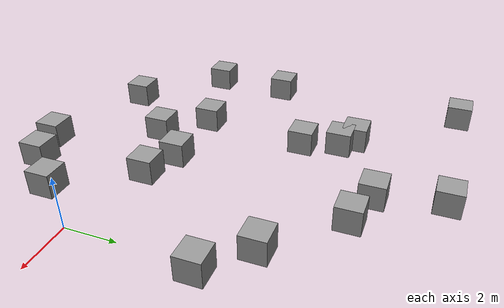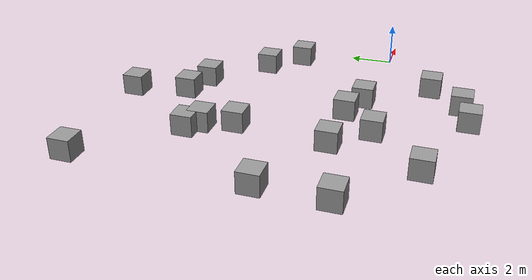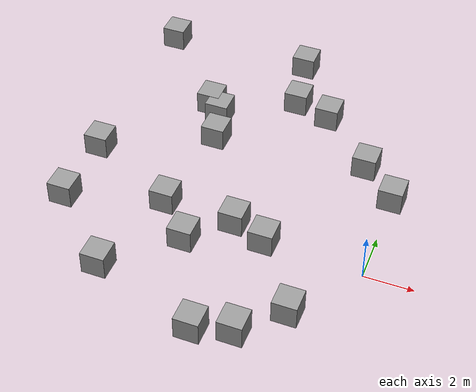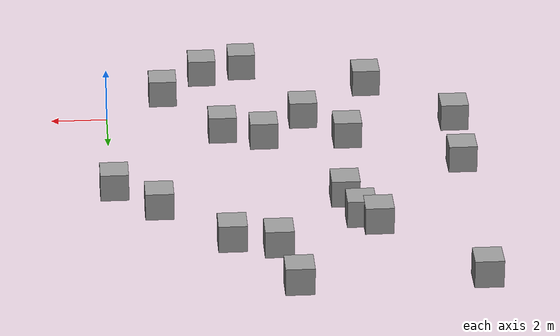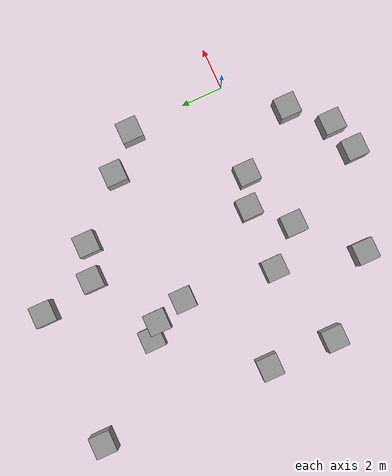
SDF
<sdf version="1.7">
 <model name="21">
  <link name="link_10">
   <inertial>
    <mass>1</mass>
    <inertia>
     <ixx>0.166667</ixx>
     <ixy>0</ixy>
     <ixz>0</ixz>
     <iyy>0.166667</iyy>
     <iyz>0</iyz>
     <izz>0.166667</izz>
    </inertia>
   </inertial>
   <pose>-6.1425 11.6478 0 0 -0 0</pose>
   <visual name="visual">
    <geometry><box><size>1 1 1</size></box></geometry>
    <material>
     <lighting>1</lighting>
     <script><uri>file://media/materials/scripts/gazebo.material</uri><name>Gazebo/Grey</name></script>
     <shader type="pixel"/>
    </material>
   </visual>
   <collision name="collision">
    <geometry><box><size>1 1 1</size></box></geometry>
    <surface>
     <friction>
      <ode><mu>1</mu><mu2>1</mu2><fdir1>0 0 0</fdir1><slip1>0</slip1><slip2>0</slip2></ode>
      <torsional>
       <coefficient>1</coefficient>
       <patch_radius>0</patch_radius>
       <surface_radius>0</surface_radius>
       <use_patch_radius>1</use_patch_radius>
       <ode><slip>0</slip></ode>
      </torsional>
     </friction>
     <bounce><restitution_coefficient>0</restitution_coefficient><threshold>1e+06</threshold></bounce>
     <contact>
      <collide_without_contact>0</collide_without_contact>
      <collide_without_contact_bitmask>1</collide_without_contact_bitmask>
      <collide_bitmask>1</collide_bitmask>
      <ode>
       <soft_cfm>0</soft_cfm>
       <soft_erp>0.2</soft_erp>
       <kp>1e+13</kp>
       <kd>1</kd>
       <max_vel>0.01</max_vel>
       <min_depth>0</min_depth>
      </ode>
      <bullet>
       <split_impulse>1</split_impulse>
       <split_impulse_penetration_threshold>-0.01</split_impulse_penetration_threshold>
       <soft_cfm>0</soft_cfm>
       <soft_erp>0.2</soft_erp>
       <kp>1e+13</kp>
       <kd>1</kd>
      </bullet>
     </contact>
    </surface>
   </collision>
  </link>
  <link name="link_11">
   <inertial>
    <mass>1</mass>
    <inertia>
     <ixx>0.166667</ixx>
     <ixy>0</ixy>
     <ixz>0</ixz>
     <iyy>0.166667</iyy>
     <iyz>0</iyz>
     <izz>0.166667</izz>
    </inertia>
   </inertial>
   <pose>-0.123891 4.67345 0 0 -0 0</pose>
   <visual name="visual">
    <geometry><box><size>1 1 1</size></box></geometry>
    <material>
     <lighting>1</lighting>
     <script><uri>file://media/materials/scripts/gazebo.material</uri><name>Gazebo/Grey</name></script>
     <shader type="pixel"/>
    </material>
   </visual>
   <collision name="collision">
    <geometry><box><size>1 1 1</size></box></geometry>
    <surface>
     <friction>
      <ode><mu>1</mu><mu2>1</mu2><fdir1>0 0 0</fdir1><slip1>0</slip1><slip2>0</slip2></ode>
      <torsional>
       <coefficient>1</coefficient>
       <patch_radius>0</patch_radius>
       <surface_radius>0</surface_radius>
       <use_patch_radius>1</use_patch_radius>
       <ode><slip>0</slip></ode>
      </torsional>
     </friction>
     <bounce><restitution_coefficient>0</restitution_coefficient><threshold>1e+06</threshold></bounce>
     <contact>
      <collide_without_contact>0</collide_without_contact>
      <collide_without_contact_bitmask>1</collide_without_contact_bitmask>
      <collide_bitmask>1</collide_bitmask>
      <ode>
       <soft_cfm>0</soft_cfm>
       <soft_erp>0.2</soft_erp>
       <kp>1e+13</kp>
       <kd>1</kd>
       <max_vel>0.01</max_vel>
       <min_depth>0</min_depth>
      </ode>
      <bullet>
       <split_impulse>1</split_impulse>
       <split_impulse_penetration_threshold>-0.01</split_impulse_penetration_threshold>
       <soft_cfm>0</soft_cfm>
       <soft_erp>0.2</soft_erp>
       <kp>1e+13</kp>
       <kd>1</kd>
      </bullet>
     </contact>
    </surface>
   </collision>
  </link>
  <link name="link_12">
   <inertial>
    <mass>1</mass>
    <inertia>
     <ixx>0.166667</ixx>
     <ixy>0</ixy>
     <ixz>0</ixz>
     <iyy>0.166667</iyy>
     <iyz>0</iyz>
     <izz>0.166667</izz>
    </inertia>
   </inertial>
   <pose>-1.64634 6.14844 0 0 -0 0</pose>
   <visual name="visual">
    <geometry><box><size>1 1 1</size></box></geometry>
    <material>
     <lighting>1</lighting>
     <script><uri>file://media/materials/scripts/gazebo.material</uri><name>Gazebo/Grey</name></script>
     <shader type="pixel"/>
    </material>
   </visual>
   <collision name="collision">
    <geometry><box><size>1 1 1</size></box></geometry>
    <surface>
     <friction>
      <ode><mu>1</mu><mu2>1</mu2><fdir1>0 0 0</fdir1><slip1>0</slip1><slip2>0</slip2></ode>
      <torsional>
       <coefficient>1</coefficient>
       <patch_radius>0</patch_radius>
       <surface_radius>0</surface_radius>
       <use_patch_radius>1</use_patch_radius>
       <ode><slip>0</slip></ode>
      </torsional>
     </friction>
     <bounce><restitution_coefficient>0</restitution_coefficient><threshold>1e+06</threshold></bounce>
     <contact>
      <collide_without_contact>0</collide_without_contact>
      <collide_without_contact_bitmask>1</collide_without_contact_bitmask>
      <collide_bitmask>1</collide_bitmask>
      <ode>
       <soft_cfm>0</soft_cfm>
       <soft_erp>0.2</soft_erp>
       <kp>1e+13</kp>
       <kd>1</kd>
       <max_vel>0.01</max_vel>
       <min_depth>0</min_depth>
      </ode>
      <bullet>
       <split_impulse>1</split_impulse>
       <split_impulse_penetration_threshold>-0.01</split_impulse_penetration_threshold>
       <soft_cfm>0</soft_cfm>
       <soft_erp>0.2</soft_erp>
       <kp>1e+13</kp>
       <kd>1</kd>
      </bullet>
     </contact>
    </surface>
   </collision>
  </link>
  <link name="link_13">
   <inertial>
    <mass>1</mass>
    <inertia>
     <ixx>0.166667</ixx>
     <ixy>0</ixy>
     <ixz>0</ixz>
     <iyy>0.166667</iyy>
     <iyz>0</iyz>
     <izz>0.166667</izz>
    </inertia>
   </inertial>
   <pose>-4.05578 8.58638 0 0 -0 0</pose>
   <visual name="visual">
    <geometry><box><size>1 1 1</size></box></geometry>
    <material>
     <lighting>1</lighting>
     <script><uri>file://media/materials/scripts/gazebo.material</uri><name>Gazebo/Grey</name></script>
     <shader type="pixel"/>
    </material>
   </visual>
   <collision name="collision">
    <geometry><box><size>1 1 1</size></box></geometry>
    <surface>
     <friction>
      <ode><mu>1</mu><mu2>1</mu2><fdir1>0 0 0</fdir1><slip1>0</slip1><slip2>0</slip2></ode>
      <torsional>
       <coefficient>1</coefficient>
       <patch_radius>0</patch_radius>
       <surface_radius>0</surface_radius>
       <use_patch_radius>1</use_patch_radius>
       <ode><slip>0</slip></ode>
      </torsional>
     </friction>
     <bounce><restitution_coefficient>0</restitution_coefficient><threshold>1e+06</threshold></bounce>
     <contact>
      <collide_without_contact>0</collide_without_contact>
      <collide_without_contact_bitmask>1</collide_without_contact_bitmask>
      <collide_bitmask>1</collide_bitmask>
      <ode>
       <soft_cfm>0</soft_cfm>
       <soft_erp>0.2</soft_erp>
       <kp>1e+13</kp>
       <kd>1</kd>
       <max_vel>0.01</max_vel>
       <min_depth>0</min_depth>
      </ode>
      <bullet>
       <split_impulse>1</split_impulse>
       <split_impulse_penetration_threshold>-0.01</split_impulse_penetration_threshold>
       <soft_cfm>0</soft_cfm>
       <soft_erp>0.2</soft_erp>
       <kp>1e+13</kp>
       <kd>1</kd>
      </bullet>
     </contact>
    </surface>
   </collision>
  </link>
  <link name="link_14">
   <inertial>
    <mass>1</mass>
    <inertia>
     <ixx>0.166667</ixx>
     <ixy>0</ixy>
     <ixz>0</ixz>
     <iyy>0.166667</iyy>
     <iyz>0</iyz>
     <izz>0.166667</izz>
    </inertia>
   </inertial>
   <pose>-5.62589 9.06819 0 0 -0 0</pose>
   <visual name="visual">
    <geometry><box><size>1 1 1</size></box></geometry>
    <material>
     <lighting>1</lighting>
     <script><uri>file://media/materials/scripts/gazebo.material</uri><name>Gazebo/Grey</name></script>
     <shader type="pixel"/>
    </material>
   </visual>
   <collision name="collision">
    <geometry><box><size>1 1 1</size></box></geometry>
    <surface>
     <friction>
      <ode><mu>1</mu><mu2>1</mu2><fdir1>0 0 0</fdir1><slip1>0</slip1><slip2>0</slip2></ode>
      <torsional>
       <coefficient>1</coefficient>
       <patch_radius>0</patch_radius>
       <surface_radius>0</surface_radius>
       <use_patch_radius>1</use_patch_radius>
       <ode><slip>0</slip></ode>
      </torsional>
     </friction>
     <bounce><restitution_coefficient>0</restitution_coefficient><threshold>1e+06</threshold></bounce>
     <contact>
      <collide_without_contact>0</collide_without_contact>
      <collide_without_contact_bitmask>1</collide_without_contact_bitmask>
      <collide_bitmask>1</collide_bitmask>
      <ode>
       <soft_cfm>0</soft_cfm>
       <soft_erp>0.2</soft_erp>
       <kp>1e+13</kp>
       <kd>1</kd>
       <max_vel>0.01</max_vel>
       <min_depth>0</min_depth>
      </ode>
      <bullet>
       <split_impulse>1</split_impulse>
       <split_impulse_penetration_threshold>-0.01</split_impulse_penetration_threshold>
       <soft_cfm>0</soft_cfm>
       <soft_erp>0.2</soft_erp>
       <kp>1e+13</kp>
       <kd>1</kd>
      </bullet>
     </contact>
    </surface>
   </collision>
  </link>
  <link name="link_15">
   <inertial>
    <mass>1</mass>
    <inertia>
     <ixx>0.166667</ixx>
     <ixy>0</ixy>
     <ixz>0</ixz>
     <iyy>0.166667</iyy>
     <iyz>0</iyz>
     <izz>0.166667</izz>
    </inertia>
   </inertial>
   <pose>-12.5405 11.5403 0 0 -0 0</pose>
   <visual name="visual">
    <geometry><box><size>1 1 1</size></box></geometry>
    <material>
     <lighting>1</lighting>
     <script><uri>file://media/materials/scripts/gazebo.material</uri><name>Gazebo/Grey</name></script>
     <shader type="pixel"/>
    </material>
   </visual>
   <collision name="collision">
    <geometry><box><size>1 1 1</size></box></geometry>
    <surface>
     <friction>
      <ode><mu>1</mu><mu2>1</mu2><fdir1>0 0 0</fdir1><slip1>0</slip1><slip2>0</slip2></ode>
      <torsional>
       <coefficient>1</coefficient>
       <patch_radius>0</patch_radius>
       <surface_radius>0</surface_radius>
       <use_patch_radius>1</use_patch_radius>
       <ode><slip>0</slip></ode>
      </torsional>
     </friction>
     <bounce><restitution_coefficient>0</restitution_coefficient><threshold>1e+06</threshold></bounce>
     <contact>
      <collide_without_contact>0</collide_without_contact>
      <collide_without_contact_bitmask>1</collide_without_contact_bitmask>
      <collide_bitmask>1</collide_bitmask>
      <ode>
       <soft_cfm>0</soft_cfm>
       <soft_erp>0.2</soft_erp>
       <kp>1e+13</kp>
       <kd>1</kd>
       <max_vel>0.01</max_vel>
       <min_depth>0</min_depth>
      </ode>
      <bullet>
       <split_impulse>1</split_impulse>
       <split_impulse_penetration_threshold>-0.01</split_impulse_penetration_threshold>
       <soft_cfm>0</soft_cfm>
       <soft_erp>0.2</soft_erp>
       <kp>1e+13</kp>
       <kd>1</kd>
      </bullet>
     </contact>
    </surface>
   </collision>
  </link>
  <link name="link_16">
   <inertial>
    <mass>1</mass>
    <inertia>
     <ixx>0.166667</ixx>
     <ixy>0</ixy>
     <ixz>0</ixz>
     <iyy>0.166667</iyy>
     <iyz>0</iyz>
     <izz>0.166667</izz>
    </inertia>
   </inertial>
   <pose>-12.5473 3.34768 0 0 -0 0</pose>
   <visual name="visual">
    <geometry><box><size>1 1 1</size></box></geometry>
    <material>
     <lighting>1</lighting>
     <script><uri>file://media/materials/scripts/gazebo.material</uri><name>Gazebo/Grey</name></script>
     <shader type="pixel"/>
    </material>
   </visual>
   <collision name="collision">
    <geometry><box><size>1 1 1</size></box></geometry>
    <surface>
     <friction>
      <ode><mu>1</mu><mu2>1</mu2><fdir1>0 0 0</fdir1><slip1>0</slip1><slip2>0</slip2></ode>
      <torsional>
       <coefficient>1</coefficient>
       <patch_radius>0</patch_radius>
       <surface_radius>0</surface_radius>
       <use_patch_radius>1</use_patch_radius>
       <ode><slip>0</slip></ode>
      </torsional>
     </friction>
     <bounce><restitution_coefficient>0</restitution_coefficient><threshold>1e+06</threshold></bounce>
     <contact>
      <collide_without_contact>0</collide_without_contact>
      <collide_without_contact_bitmask>1</collide_without_contact_bitmask>
      <collide_bitmask>1</collide_bitmask>
      <ode>
       <soft_cfm>0</soft_cfm>
       <soft_erp>0.2</soft_erp>
       <kp>1e+13</kp>
       <kd>1</kd>
       <max_vel>0.01</max_vel>
       <min_depth>0</min_depth>
      </ode>
      <bullet>
       <split_impulse>1</split_impulse>
       <split_impulse_penetration_threshold>-0.01</split_impulse_penetration_threshold>
       <soft_cfm>0</soft_cfm>
       <soft_erp>0.2</soft_erp>
       <kp>1e+13</kp>
       <kd>1</kd>
      </bullet>
     </contact>
    </surface>
   </collision>
  </link>
  <link name="link_17">
   <inertial>
    <mass>1</mass>
    <inertia>
     <ixx>0.166667</ixx>
     <ixy>0</ixy>
     <ixz>0</ixz>
     <iyy>0.166667</iyy>
     <iyz>0</iyz>
     <izz>0.166667</izz>
    </inertia>
   </inertial>
   <pose>-12.5918 0.162825 0 0 -0 0</pose>
   <visual name="visual">
    <geometry><box><size>1 1 1</size></box></geometry>
    <material>
     <lighting>1</lighting>
     <script><uri>file://media/materials/scripts/gazebo.material</uri><name>Gazebo/Grey</name></script>
     <shader type="pixel"/>
    </material>
   </visual>
   <collision name="collision">
    <geometry><box><size>1 1 1</size></box></geometry>
    <surface>
     <friction>
      <ode><mu>1</mu><mu2>1</mu2><fdir1>0 0 0</fdir1><slip1>0</slip1><slip2>0</slip2></ode>
      <torsional>
       <coefficient>1</coefficient>
       <patch_radius>0</patch_radius>
       <surface_radius>0</surface_radius>
       <use_patch_radius>1</use_patch_radius>
       <ode><slip>0</slip></ode>
      </torsional>
     </friction>
     <bounce><restitution_coefficient>0</restitution_coefficient><threshold>1e+06</threshold></bounce>
     <contact>
      <collide_without_contact>0</collide_without_contact>
      <collide_without_contact_bitmask>1</collide_without_contact_bitmask>
      <collide_bitmask>1</collide_bitmask>
      <ode>
       <soft_cfm>0</soft_cfm>
       <soft_erp>0.2</soft_erp>
       <kp>1e+13</kp>
       <kd>1</kd>
       <max_vel>0.01</max_vel>
       <min_depth>0</min_depth>
      </ode>
      <bullet>
       <split_impulse>1</split_impulse>
       <split_impulse_penetration_threshold>-0.01</split_impulse_penetration_threshold>
       <soft_cfm>0</soft_cfm>
       <soft_erp>0.2</soft_erp>
       <kp>1e+13</kp>
       <kd>1</kd>
      </bullet>
     </contact>
    </surface>
   </collision>
  </link>
  <link name="link_18">
   <inertial>
    <mass>1</mass>
    <inertia>
     <ixx>0.166667</ixx>
     <ixy>0</ixy>
     <ixz>0</ixz>
     <iyy>0.166667</iyy>
     <iyz>0</iyz>
     <izz>0.166667</izz>
    </inertia>
   </inertial>
   <pose>-8.61368 1.28544 0 0 -0 0</pose>
   <visual name="visual">
    <geometry><box><size>1 1 1</size></box></geometry>
    <material>
     <lighting>1</lighting>
     <script><uri>file://media/materials/scripts/gazebo.material</uri><name>Gazebo/Grey</name></script>
     <shader type="pixel"/>
    </material>
   </visual>
   <collision name="collision">
    <geometry><box><size>1 1 1</size></box></geometry>
    <surface>
     <friction>
      <ode><mu>1</mu><mu2>1</mu2><fdir1>0 0 0</fdir1><slip1>0</slip1><slip2>0</slip2></ode>
      <torsional>
       <coefficient>1</coefficient>
       <patch_radius>0</patch_radius>
       <surface_radius>0</surface_radius>
       <use_patch_radius>1</use_patch_radius>
       <ode><slip>0</slip></ode>
      </torsional>
     </friction>
     <bounce><restitution_coefficient>0</restitution_coefficient><threshold>1e+06</threshold></bounce>
     <contact>
      <collide_without_contact>0</collide_without_contact>
      <collide_without_contact_bitmask>1</collide_without_contact_bitmask>
      <collide_bitmask>1</collide_bitmask>
      <ode>
       <soft_cfm>0</soft_cfm>
       <soft_erp>0.2</soft_erp>
       <kp>1e+13</kp>
       <kd>1</kd>
       <max_vel>0.01</max_vel>
       <min_depth>0</min_depth>
      </ode>
      <bullet>
       <split_impulse>1</split_impulse>
       <split_impulse_penetration_threshold>-0.01</split_impulse_penetration_threshold>
       <soft_cfm>0</soft_cfm>
       <soft_erp>0.2</soft_erp>
       <kp>1e+13</kp>
       <kd>1</kd>
      </bullet>
     </contact>
    </surface>
   </collision>
  </link>
  <link name="link_19">
   <inertial>
    <mass>1</mass>
    <inertia>
     <ixx>0.166667</ixx>
     <ixy>0</ixy>
     <ixz>0</ixz>
     <iyy>0.166667</iyy>
     <iyz>0</iyz>
     <izz>0.166667</izz>
    </inertia>
   </inertial>
   <pose>-9.62189 -2.76465 0 0 -0 0</pose>
   <visual name="visual">
    <geometry><box><size>1 1 1</size></box></geometry>
    <material>
     <lighting>1</lighting>
     <script><uri>file://media/materials/scripts/gazebo.material</uri><name>Gazebo/Grey</name></script>
     <shader type="pixel"/>
    </material>
   </visual>
   <collision name="collision">
    <geometry><box><size>1 1 1</size></box></geometry>
    <surface>
     <friction>
      <ode><mu>1</mu><mu2>1</mu2><fdir1>0 0 0</fdir1><slip1>0</slip1><slip2>0</slip2></ode>
      <torsional>
       <coefficient>1</coefficient>
       <patch_radius>0</patch_radius>
       <surface_radius>0</surface_radius>
       <use_patch_radius>1</use_patch_radius>
       <ode><slip>0</slip></ode>
      </torsional>
     </friction>
     <bounce><restitution_coefficient>0</restitution_coefficient><threshold>1e+06</threshold></bounce>
     <contact>
      <collide_without_contact>0</collide_without_contact>
      <collide_without_contact_bitmask>1</collide_without_contact_bitmask>
      <collide_bitmask>1</collide_bitmask>
      <ode>
       <soft_cfm>0</soft_cfm>
       <soft_erp>0.2</soft_erp>
       <kp>1e+13</kp>
       <kd>1</kd>
       <max_vel>0.01</max_vel>
       <min_depth>0</min_depth>
      </ode>
      <bullet>
       <split_impulse>1</split_impulse>
       <split_impulse_penetration_threshold>-0.01</split_impulse_penetration_threshold>
       <soft_cfm>0</soft_cfm>
       <soft_erp>0.2</soft_erp>
       <kp>1e+13</kp>
       <kd>1</kd>
      </bullet>
     </contact>
    </surface>
   </collision>
  </link>
  <link name="link_23">
   <inertial>
    <mass>1</mass>
    <inertia>
     <ixx>0.166667</ixx>
     <ixy>0</ixy>
     <ixz>0</ixz>
     <iyy>0.166667</iyy>
     <iyz>0</iyz>
     <izz>0.166667</izz>
    </inertia>
   </inertial>
   <pose>-5.11832 -4.3468 0 0 -0 0</pose>
   <visual name="visual">
    <geometry><box><size>1 1 1</size></box></geometry>
    <material>
     <lighting>1</lighting>
     <script><uri>file://media/materials/scripts/gazebo.material</uri><name>Gazebo/Grey</name></script>
     <shader type="pixel"/>
    </material>
   </visual>
   <collision name="collision">
    <geometry><box><size>1 1 1</size></box></geometry>
    <surface>
     <friction>
      <ode><mu>1</mu><mu2>1</mu2><fdir1>0 0 0</fdir1><slip1>0</slip1><slip2>0</slip2></ode>
      <torsional>
       <coefficient>1</coefficient>
       <patch_radius>0</patch_radius>
       <surface_radius>0</surface_radius>
       <use_patch_radius>1</use_patch_radius>
       <ode><slip>0</slip></ode>
      </torsional>
     </friction>
     <bounce><restitution_coefficient>0</restitution_coefficient><threshold>1e+06</threshold></bounce>
     <contact>
      <collide_without_contact>0</collide_without_contact>
      <collide_without_contact_bitmask>1</collide_without_contact_bitmask>
      <collide_bitmask>1</collide_bitmask>
      <ode>
       <soft_cfm>0</soft_cfm>
       <soft_erp>0.2</soft_erp>
       <kp>1e+13</kp>
       <kd>1</kd>
       <max_vel>0.01</max_vel>
       <min_depth>0</min_depth>
      </ode>
      <bullet>
       <split_impulse>1</split_impulse>
       <split_impulse_penetration_threshold>-0.01</split_impulse_penetration_threshold>
       <soft_cfm>0</soft_cfm>
       <soft_erp>0.2</soft_erp>
       <kp>1e+13</kp>
       <kd>1</kd>
      </bullet>
     </contact>
    </surface>
   </collision>
  </link>
  <link name="link_48">
   <inertial>
    <mass>1</mass>
    <inertia>
     <ixx>0.166667</ixx>
     <ixy>0</ixy>
     <ixz>0</ixz>
     <iyy>0.166667</iyy>
     <iyz>0</iyz>
     <izz>0.166667</izz>
    </inertia>
   </inertial>
   <pose>-5.60332 1.17615 0 0 -0 0</pose>
   <visual name="visual">
    <geometry><box><size>1 1 1</size></box></geometry>
    <material>
     <lighting>1</lighting>
     <script><uri>file://media/materials/scripts/gazebo.material</uri><name>Gazebo/Grey</name></script>
     <shader type="pixel"/>
    </material>
   </visual>
   <collision name="collision">
    <geometry><box><size>1 1 1</size></box></geometry>
    <surface>
     <friction>
      <ode><mu>1</mu><mu2>1</mu2><fdir1>0 0 0</fdir1><slip1>0</slip1><slip2>0</slip2></ode>
      <torsional>
       <coefficient>1</coefficient>
       <patch_radius>0</patch_radius>
       <surface_radius>0</surface_radius>
       <use_patch_radius>1</use_patch_radius>
       <ode><slip>0</slip></ode>
      </torsional>
     </friction>
     <bounce><restitution_coefficient>0</restitution_coefficient><threshold>1e+06</threshold></bounce>
     <contact>
      <collide_without_contact>0</collide_without_contact>
      <collide_without_contact_bitmask>1</collide_without_contact_bitmask>
      <collide_bitmask>1</collide_bitmask>
      <ode>
       <soft_cfm>0</soft_cfm>
       <soft_erp>0.2</soft_erp>
       <kp>1e+13</kp>
       <kd>1</kd>
       <max_vel>0.01</max_vel>
       <min_depth>0</min_depth>
      </ode>
      <bullet>
       <split_impulse>1</split_impulse>
       <split_impulse_penetration_threshold>-0.01</split_impulse_penetration_threshold>
       <soft_cfm>0</soft_cfm>
       <soft_erp>0.2</soft_erp>
       <kp>1e+13</kp>
       <kd>1</kd>
      </bullet>
     </contact>
    </surface>
   </collision>
  </link>
  <link name="link_49">
   <inertial>
    <mass>1</mass>
    <inertia>
     <ixx>0.166667</ixx>
     <ixy>0</ixy>
     <ixz>0</ixz>
     <iyy>0.166667</iyy>
     <iyz>0</iyz>
     <izz>0.166667</izz>
    </inertia>
   </inertial>
   <pose>-4.14605 0.614505 0 0 -0 0</pose>
   <visual name="visual">
    <geometry><box><size>1 1 1</size></box></geometry>
    <material>
     <lighting>1</lighting>
     <script><uri>file://media/materials/scripts/gazebo.material</uri><name>Gazebo/Grey</name></script>
     <shader type="pixel"/>
    </material>
   </visual>
   <collision name="collision">
    <geometry><box><size>1 1 1</size></box></geometry>
    <surface>
     <friction>
      <ode><mu>1</mu><mu2>1</mu2><fdir1>0 0 0</fdir1><slip1>0</slip1><slip2>0</slip2></ode>
      <torsional>
       <coefficient>1</coefficient>
       <patch_radius>0</patch_radius>
       <surface_radius>0</surface_radius>
       <use_patch_radius>1</use_patch_radius>
       <ode><slip>0</slip></ode>
      </torsional>
     </friction>
     <bounce><restitution_coefficient>0</restitution_coefficient><threshold>1e+06</threshold></bounce>
     <contact>
      <collide_without_contact>0</collide_without_contact>
      <collide_without_contact_bitmask>1</collide_without_contact_bitmask>
      <collide_bitmask>1</collide_bitmask>
      <ode>
       <soft_cfm>0</soft_cfm>
       <soft_erp>0.2</soft_erp>
       <kp>1e+13</kp>
       <kd>1</kd>
       <max_vel>0.01</max_vel>
       <min_depth>0</min_depth>
      </ode>
      <bullet>
       <split_impulse>1</split_impulse>
       <split_impulse_penetration_threshold>-0.01</split_impulse_penetration_threshold>
       <soft_cfm>0</soft_cfm>
       <soft_erp>0.2</soft_erp>
       <kp>1e+13</kp>
       <kd>1</kd>
      </bullet>
     </contact>
    </surface>
   </collision>
  </link>
  <link name="link_50">
   <inertial>
    <mass>1</mass>
    <inertia>
     <ixx>0.166667</ixx>
     <ixy>0</ixy>
     <ixz>0</ixz>
     <iyy>0.166667</iyy>
     <iyz>0</iyz>
     <izz>0.166667</izz>
    </inertia>
   </inertial>
   <pose>-7.12355 -0.347992 0 0 -0 0</pose>
   <visual name="visual">
    <geometry><box><size>1 1 1</size></box></geometry>
    <material>
     <lighting>1</lighting>
     <script><uri>file://media/materials/scripts/gazebo.material</uri><name>Gazebo/Grey</name></script>
     <shader type="pixel"/>
    </material>
   </visual>
   <collision name="collision">
    <geometry><box><size>1 1 1</size></box></geometry>
    <surface>
     <friction>
      <ode><mu>1</mu><mu2>1</mu2><fdir1>0 0 0</fdir1><slip1>0</slip1><slip2>0</slip2></ode>
      <torsional>
       <coefficient>1</coefficient>
       <patch_radius>0</patch_radius>
       <surface_radius>0</surface_radius>
       <use_patch_radius>1</use_patch_radius>
       <ode><slip>0</slip></ode>
      </torsional>
     </friction>
     <bounce><restitution_coefficient>0</restitution_coefficient><threshold>1e+06</threshold></bounce>
     <contact>
      <collide_without_contact>0</collide_without_contact>
      <collide_without_contact_bitmask>1</collide_without_contact_bitmask>
      <collide_bitmask>1</collide_bitmask>
      <ode>
       <soft_cfm>0</soft_cfm>
       <soft_erp>0.2</soft_erp>
       <kp>1e+13</kp>
       <kd>1</kd>
       <max_vel>0.01</max_vel>
       <min_depth>0</min_depth>
      </ode>
      <bullet>
       <split_impulse>1</split_impulse>
       <split_impulse_penetration_threshold>-0.01</split_impulse_penetration_threshold>
       <soft_cfm>0</soft_cfm>
       <soft_erp>0.2</soft_erp>
       <kp>1e+13</kp>
       <kd>1</kd>
      </bullet>
     </contact>
    </surface>
   </collision>
  </link>
  <link name="link_51">
   <inertial>
    <mass>1</mass>
    <inertia>
     <ixx>0.166667</ixx>
     <ixy>0</ixy>
     <ixz>0</ixz>
     <iyy>0.166667</iyy>
     <iyz>0</iyz>
     <izz>0.166667</izz>
    </inertia>
   </inertial>
   <pose>-2.10549 -2.35857 0 0 -0 0</pose>
   <visual name="visual">
    <geometry><box><size>1 1 1</size></box></geometry>
    <material>
     <lighting>1</lighting>
     <script><uri>file://media/materials/scripts/gazebo.material</uri><name>Gazebo/Grey</name></script>
     <shader type="pixel"/>
    </material>
   </visual>
   <collision name="collision">
    <geometry><box><size>1 1 1</size></box></geometry>
    <surface>
     <friction>
      <ode><mu>1</mu><mu2>1</mu2><fdir1>0 0 0</fdir1><slip1>0</slip1><slip2>0</slip2></ode>
      <torsional>
       <coefficient>1</coefficient>
       <patch_radius>0</patch_radius>
       <surface_radius>0</surface_radius>
       <use_patch_radius>1</use_patch_radius>
       <ode><slip>0</slip></ode>
      </torsional>
     </friction>
     <bounce><restitution_coefficient>0</restitution_coefficient><threshold>1e+06</threshold></bounce>
     <contact>
      <collide_without_contact>0</collide_without_contact>
      <collide_without_contact_bitmask>1</collide_without_contact_bitmask>
      <collide_bitmask>1</collide_bitmask>
      <ode>
       <soft_cfm>0</soft_cfm>
       <soft_erp>0.2</soft_erp>
       <kp>1e+13</kp>
       <kd>1</kd>
       <max_vel>0.01</max_vel>
       <min_depth>0</min_depth>
      </ode>
      <bullet>
       <split_impulse>1</split_impulse>
       <split_impulse_penetration_threshold>-0.01</split_impulse_penetration_threshold>
       <soft_cfm>0</soft_cfm>
       <soft_erp>0.2</soft_erp>
       <kp>1e+13</kp>
       <kd>1</kd>
      </bullet>
     </contact>
    </surface>
   </collision>
  </link>
  <link name="link_52">
   <inertial>
    <mass>1</mass>
    <inertia>
     <ixx>0.166667</ixx>
     <ixy>0</ixy>
     <ixz>0</ixz>
     <iyy>0.166667</iyy>
     <iyz>0</iyz>
     <izz>0.166667</izz>
    </inertia>
   </inertial>
   <pose>-3.61908 -3.91965 0 0 -0 0</pose>
   <visual name="visual">
    <geometry><box><size>1 1 1</size></box></geometry>
    <material>
     <lighting>1</lighting>
     <script><uri>file://media/materials/scripts/gazebo.material</uri><name>Gazebo/Grey</name></script>
     <shader type="pixel"/>
    </material>
   </visual>
   <collision name="collision">
    <geometry><box><size>1 1 1</size></box></geometry>
    <surface>
     <friction>
      <ode><mu>1</mu><mu2>1</mu2><fdir1>0 0 0</fdir1><slip1>0</slip1><slip2>0</slip2></ode>
      <torsional>
       <coefficient>1</coefficient>
       <patch_radius>0</patch_radius>
       <surface_radius>0</surface_radius>
       <use_patch_radius>1</use_patch_radius>
       <ode><slip>0</slip></ode>
      </torsional>
     </friction>
     <bounce><restitution_coefficient>0</restitution_coefficient><threshold>1e+06</threshold></bounce>
     <contact>
      <collide_without_contact>0</collide_without_contact>
      <collide_without_contact_bitmask>1</collide_without_contact_bitmask>
      <collide_bitmask>1</collide_bitmask>
      <ode>
       <soft_cfm>0</soft_cfm>
       <soft_erp>0.2</soft_erp>
       <kp>1e+13</kp>
       <kd>1</kd>
       <max_vel>0.01</max_vel>
       <min_depth>0</min_depth>
      </ode>
      <bullet>
       <split_impulse>1</split_impulse>
       <split_impulse_penetration_threshold>-0.01</split_impulse_penetration_threshold>
       <soft_cfm>0</soft_cfm>
       <soft_erp>0.2</soft_erp>
       <kp>1e+13</kp>
       <kd>1</kd>
      </bullet>
     </contact>
    </surface>
   </collision>
  </link>
  <link name="link_53">
   <inertial>
    <mass>1</mass>
    <inertia>
     <ixx>0.166667</ixx>
     <ixy>0</ixy>
     <ixz>0</ixz>
     <iyy>0.166667</iyy>
     <iyz>0</iyz>
     <izz>0.166667</izz>
    </inertia>
   </inertial>
   <pose>-8.60388 7.12905 0 0 -0 0</pose>
   <visual name="visual">
    <geometry><box><size>1 1 1</size></box></geometry>
    <material>
     <lighting>1</lighting>
     <script><uri>file://media/materials/scripts/gazebo.material</uri><name>Gazebo/Grey</name></script>
     <shader type="pixel"/>
    </material>
   </visual>
   <collision name="collision">
    <geometry><box><size>1 1 1</size></box></geometry>
    <surface>
     <friction>
      <ode><mu>1</mu><mu2>1</mu2><fdir1>0 0 0</fdir1><slip1>0</slip1><slip2>0</slip2></ode>
      <torsional>
       <coefficient>1</coefficient>
       <patch_radius>0</patch_radius>
       <surface_radius>0</surface_radius>
       <use_patch_radius>1</use_patch_radius>
       <ode><slip>0</slip></ode>
      </torsional>
     </friction>
     <bounce><restitution_coefficient>0</restitution_coefficient><threshold>1e+06</threshold></bounce>
     <contact>
      <collide_without_contact>0</collide_without_contact>
      <collide_without_contact_bitmask>1</collide_without_contact_bitmask>
      <collide_bitmask>1</collide_bitmask>
      <ode>
       <soft_cfm>0</soft_cfm>
       <soft_erp>0.2</soft_erp>
       <kp>1e+13</kp>
       <kd>1</kd>
       <max_vel>0.01</max_vel>
       <min_depth>0</min_depth>
      </ode>
      <bullet>
       <split_impulse>1</split_impulse>
       <split_impulse_penetration_threshold>-0.01</split_impulse_penetration_threshold>
       <soft_cfm>0</soft_cfm>
       <soft_erp>0.2</soft_erp>
       <kp>1e+13</kp>
       <kd>1</kd>
      </bullet>
     </contact>
    </surface>
   </collision>
  </link>
  <link name="link_54">
   <inertial>
    <mass>1</mass>
    <inertia>
     <ixx>0.166667</ixx>
     <ixy>0</ixy>
     <ixz>0</ixz>
     <iyy>0.166667</iyy>
     <iyz>0</iyz>
     <izz>0.166667</izz>
    </inertia>
   </inertial>
   <pose>-9.18778 7.64416 0 0 -0 0</pose>
   <visual name="visual">
    <geometry><box><size>1 1 1</size></box></geometry>
    <material>
     <lighting>1</lighting>
     <script><uri>file://media/materials/scripts/gazebo.material</uri><name>Gazebo/Grey</name></script>
     <shader type="pixel"/>
    </material>
   </visual>
   <collision name="collision">
    <geometry><box><size>1 1 1</size></box></geometry>
    <surface>
     <friction>
      <ode><mu>1</mu><mu2>1</mu2><fdir1>0 0 0</fdir1><slip1>0</slip1><slip2>0</slip2></ode>
      <torsional>
       <coefficient>1</coefficient>
       <patch_radius>0</patch_radius>
       <surface_radius>0</surface_radius>
       <use_patch_radius>1</use_patch_radius>
       <ode><slip>0</slip></ode>
      </torsional>
     </friction>
     <bounce><restitution_coefficient>0</restitution_coefficient><threshold>1e+06</threshold></bounce>
     <contact>
      <collide_without_contact>0</collide_without_contact>
      <collide_without_contact_bitmask>1</collide_without_contact_bitmask>
      <collide_bitmask>1</collide_bitmask>
      <ode>
       <soft_cfm>0</soft_cfm>
       <soft_erp>0.2</soft_erp>
       <kp>1e+13</kp>
       <kd>1</kd>
       <max_vel>0.01</max_vel>
       <min_depth>0</min_depth>
      </ode>
      <bullet>
       <split_impulse>1</split_impulse>
       <split_impulse_penetration_threshold>-0.01</split_impulse_penetration_threshold>
       <soft_cfm>0</soft_cfm>
       <soft_erp>0.2</soft_erp>
       <kp>1e+13</kp>
       <kd>1</kd>
      </bullet>
     </contact>
    </surface>
   </collision>
  </link>
  <link name="link_55">
   <inertial>
    <mass>1</mass>
    <inertia>
     <ixx>0.166667</ixx>
     <ixy>0</ixy>
     <ixz>0</ixz>
     <iyy>0.166667</iyy>
     <iyz>0</iyz>
     <izz>0.166667</izz>
    </inertia>
   </inertial>
   <pose>-8.17746 5.6472 0 0 -0 0</pose>
   <visual name="visual">
    <geometry><box><size>1 1 1</size></box></geometry>
    <material>
     <lighting>1</lighting>
     <script><uri>file://media/materials/scripts/gazebo.material</uri><name>Gazebo/Grey</name></script>
     <shader type="pixel"/>
    </material>
   </visual>
   <collision name="collision">
    <geometry><box><size>1 1 1</size></box></geometry>
    <surface>
     <friction>
      <ode><mu>1</mu><mu2>1</mu2><fdir1>0 0 0</fdir1><slip1>0</slip1><slip2>0</slip2></ode>
      <torsional>
       <coefficient>1</coefficient>
       <patch_radius>0</patch_radius>
       <surface_radius>0</surface_radius>
       <use_patch_radius>1</use_patch_radius>
       <ode><slip>0</slip></ode>
      </torsional>
     </friction>
     <bounce><restitution_coefficient>0</restitution_coefficient><threshold>1e+06</threshold></bounce>
     <contact>
      <collide_without_contact>0</collide_without_contact>
      <collide_without_contact_bitmask>1</collide_without_contact_bitmask>
      <collide_bitmask>1</collide_bitmask>
      <ode>
       <soft_cfm>0</soft_cfm>
       <soft_erp>0.2</soft_erp>
       <kp>1e+13</kp>
       <kd>1</kd>
       <max_vel>0.01</max_vel>
       <min_depth>0</min_depth>
      </ode>
      <bullet>
       <split_impulse>1</split_impulse>
       <split_impulse_penetration_threshold>-0.01</split_impulse_penetration_threshold>
       <soft_cfm>0</soft_cfm>
       <soft_erp>0.2</soft_erp>
       <kp>1e+13</kp>
       <kd>1</kd>
      </bullet>
     </contact>
    </surface>
   </collision>
  </link>
  <static>0</static>
 </model>
</sdf>
